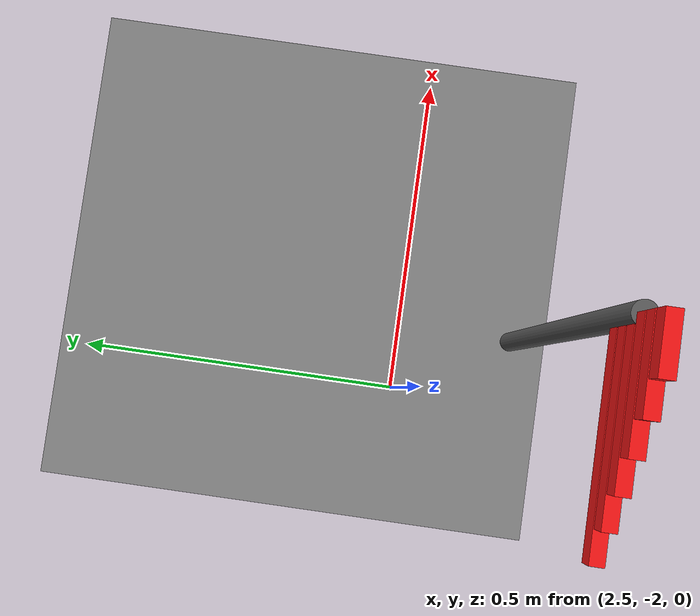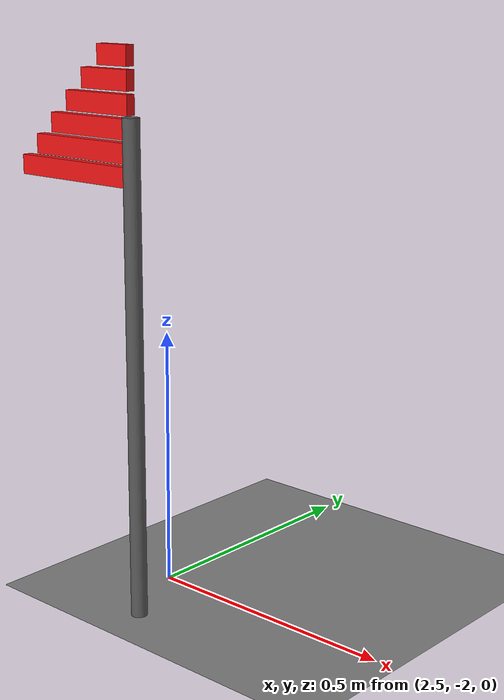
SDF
<sdf version="1.8">
 <world name="default">
  <model name="ground_plane">
   <static>true</static>
   <link name="link">
    <visual name="visual">
     <geometry><plane><normal>0 0 1</normal><size>100 100</size></plane></geometry>
     <material><ambient>0.5 0.5 0.5 1</ambient><diffuse>0.5 0.5 0.5 1</diffuse></material>
    </visual>
   </link>
  </model>
  <model name="race_B_start_finish_flag_inner">
   <static>true</static>
   <pose>2.60 -2.18 0.02 0 0 3.141592653589793</pose>
   <link name="flag_link">
    <collision name="pole_collision">
     <pose>0 0 0.45 0 0 0</pose>
     <geometry><cylinder><radius>0.015</radius><length>0.90</length></cylinder></geometry>
    </collision>
    <visual name="pole_visual">
     <pose>0 0 0.45 0 0 0</pose>
     <geometry><cylinder><radius>0.015</radius><length>0.90</length></cylinder></geometry>
     <material><ambient>0.25 0.25 0.25 1</ambient><diffuse>0.35 0.35 0.35 1</diffuse></material>
    </visual>
    <visual name="flag_bar_00_visual">
     <pose>0.135 0 0.80 0 0 0</pose>
     <geometry><box><size>0.27 0.018 0.035</size></box></geometry>
     <material>
      <ambient>0.85 0.05 0.05 1</ambient>
      <diffuse>0.95 0.08 0.08 1</diffuse>
      <emissive>0.10 0.00 0.00 1</emissive>
     </material>
    </visual>
    <visual name="flag_bar_01_visual">
     <pose>0.115 0 0.84 0 0 0</pose>
     <geometry><box><size>0.23 0.018 0.035</size></box></geometry>
     <material>
      <ambient>0.85 0.05 0.05 1</ambient>
      <diffuse>0.95 0.08 0.08 1</diffuse>
      <emissive>0.10 0.00 0.00 1</emissive>
     </material>
    </visual>
    <visual name="flag_bar_02_visual">
     <pose>0.095 0 0.88 0 0 0</pose>
     <geometry><box><size>0.19 0.018 0.035</size></box></geometry>
     <material>
      <ambient>0.85 0.05 0.05 1</ambient>
      <diffuse>0.95 0.08 0.08 1</diffuse>
      <emissive>0.10 0.00 0.00 1</emissive>
     </material>
    </visual>
    <visual name="flag_bar_03_visual">
     <pose>0.075 0 0.92 0 0 0</pose>
     <geometry><box><size>0.15 0.018 0.035</size></box></geometry>
     <material>
      <ambient>0.85 0.05 0.05 1</ambient>
      <diffuse>0.95 0.08 0.08 1</diffuse>
      <emissive>0.10 0.00 0.00 1</emissive>
     </material>
    </visual>
    <visual name="flag_bar_04_visual">
     <pose>0.055 0 0.96 0 0 0</pose>
     <geometry><box><size>0.11 0.018 0.035</size></box></geometry>
     <material>
      <ambient>0.85 0.05 0.05 1</ambient>
      <diffuse>0.95 0.08 0.08 1</diffuse>
      <emissive>0.10 0.00 0.00 1</emissive>
     </material>
    </visual>
    <visual name="flag_bar_05_visual">
     <pose>0.035 0 1.00 0 0 0</pose>
     <geometry><box><size>0.07 0.018 0.035</size></box></geometry>
     <material>
      <ambient>0.85 0.05 0.05 1</ambient>
      <diffuse>0.95 0.08 0.08 1</diffuse>
      <emissive>0.10 0.00 0.00 1</emissive>
     </material>
    </visual>
   </link>
  </model>
 </world>
</sdf>
